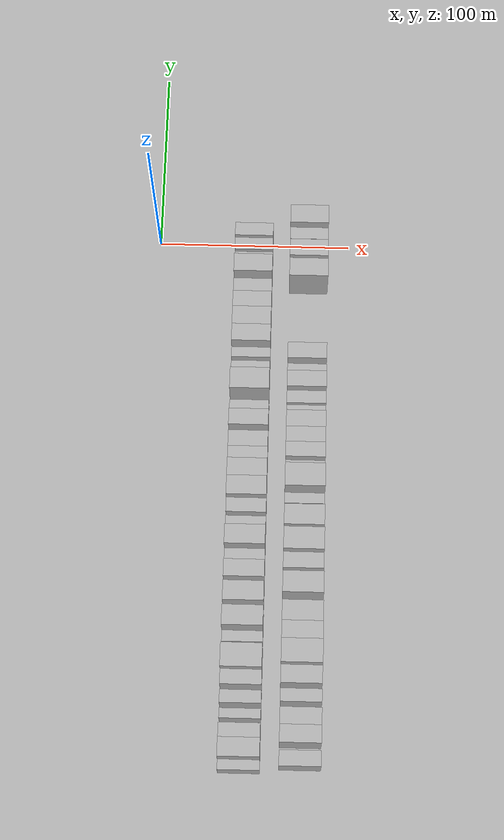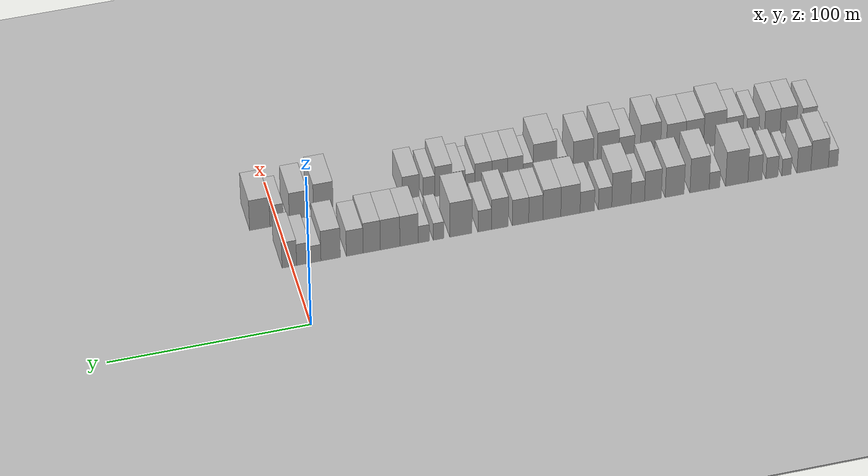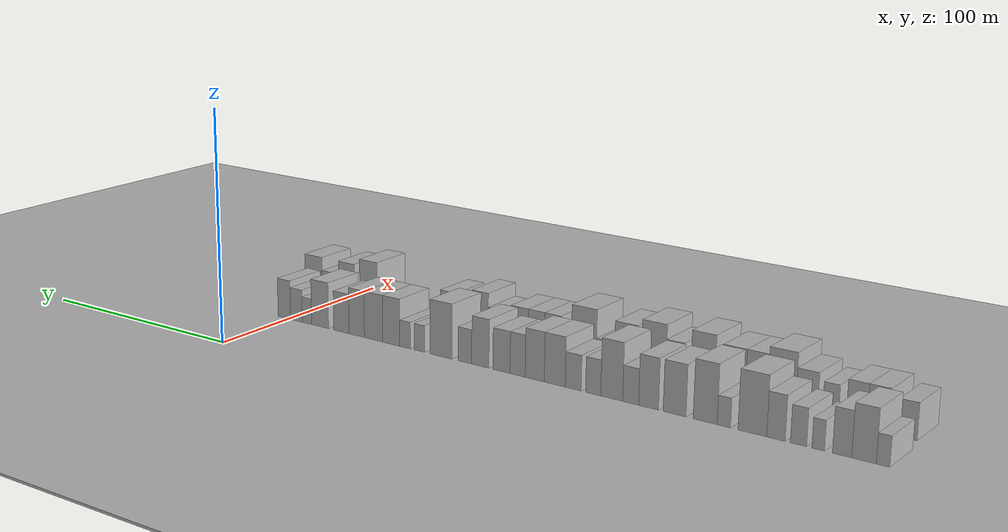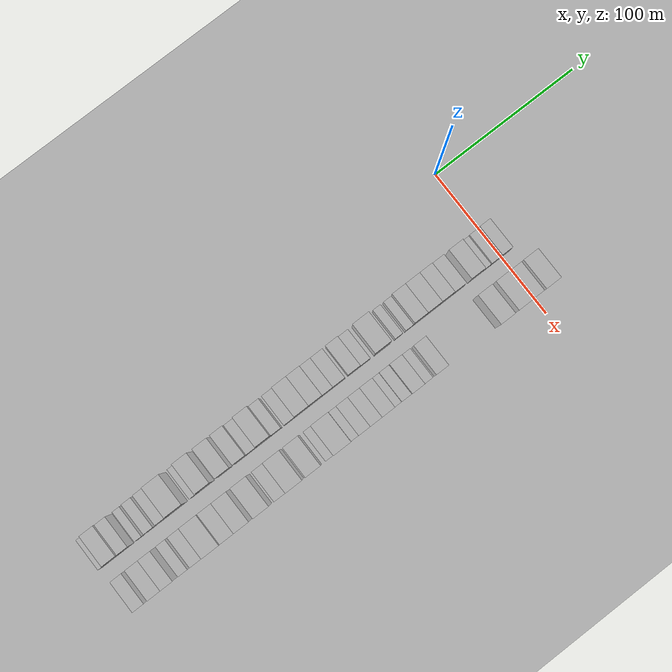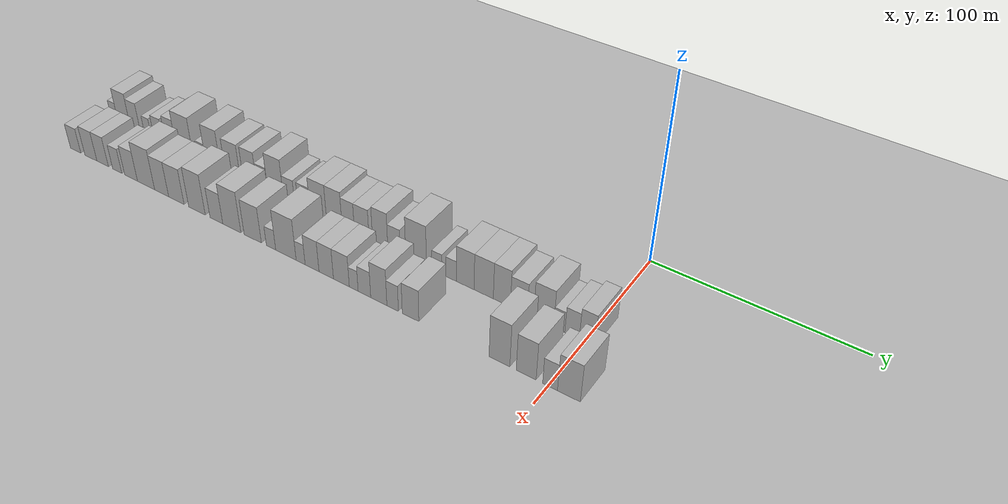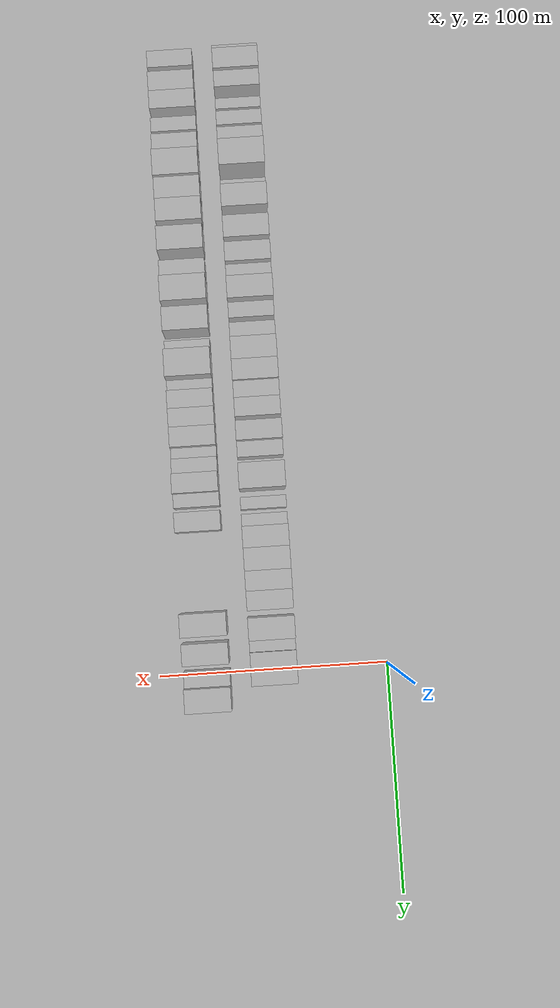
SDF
<sdf version="1.6">
 <world name="default">
  <include><name>ground_plane_1</name><uri>model://HANNAS_ground_plane</uri></include>
  <include>
   <name>ground_plane_2</name>
   <uri>model://HANNAS_ground_plane</uri>
   <pose>100 0 0  0 0 0</pose>
  </include>
  <model name="building_1">
   <static>1</static>
   <pose>50.0000 -275.5481 0 0.000000 0.000000 0.000000</pose>
   <link name="link">
    <pose>0 0 6.00 0 0 0</pose>
    <collision name="collision"><geometry><box><size>20.0000 4.9038 12.0000</size></box></geometry></collision>
    <visual name="visual">
     <cast_shadows>0</cast_shadows>
     <geometry><box><size>20.0000 4.9038 12.0000</size></box></geometry>
     <material>
      <script>
       <uri>model://HANNAS_wall/materials/scripts</uri>
       <uri>model://HANNAS_wall/materials/textures</uri>
       <name>vrc/HANNAS_wall</name>
      </script>
     </material>
    </visual>
   </link>
  </model>
  <model name="building_2">
   <static>1</static>
   <pose>50.0000 -268.5620 0 0.000000 0.000000 0.000000</pose>
   <link name="link">
    <pose>0 0 10.50 0 0 0</pose>
    <collision name="collision"><geometry><box><size>20.0000 9.0684 21.0000</size></box></geometry></collision>
    <visual name="visual">
     <cast_shadows>0</cast_shadows>
     <geometry><box><size>20.0000 9.0684 21.0000</size></box></geometry>
     <material>
      <script>
       <uri>model://HANNAS_wall/materials/scripts</uri>
       <uri>model://HANNAS_wall/materials/textures</uri>
       <name>vrc/HANNAS_wall</name>
      </script>
     </material>
    </visual>
   </link>
  </model>
  <model name="building_3">
   <static>1</static>
   <pose>50.0000 -260.4158 0 0.000000 0.000000 0.000000</pose>
   <link name="link">
    <pose>0 0 9.00 0 0 0</pose>
    <collision name="collision"><geometry><box><size>20.0000 7.2238 18.0000</size></box></geometry></collision>
    <visual name="visual">
     <cast_shadows>0</cast_shadows>
     <geometry><box><size>20.0000 7.2238 18.0000</size></box></geometry>
     <material>
      <script>
       <uri>model://HANNAS_wall/materials/scripts</uri>
       <uri>model://HANNAS_wall/materials/textures</uri>
       <name>vrc/HANNAS_wall</name>
      </script>
     </material>
    </visual>
   </link>
  </model>
  <model name="building_4">
   <static>1</static>
   <pose>50.0000 -251.4031 0 0.000000 0.000000 0.000000</pose>
   <link name="link">
    <pose>0 0 6.00 0 0 0</pose>
    <collision name="collision"><geometry><box><size>20.0000 4.8017 12.0000</size></box></geometry></collision>
    <visual name="visual">
     <cast_shadows>0</cast_shadows>
     <geometry><box><size>20.0000 4.8017 12.0000</size></box></geometry>
     <material>
      <script>
       <uri>model://HANNAS_wall/materials/scripts</uri>
       <uri>model://HANNAS_wall/materials/textures</uri>
       <name>vrc/HANNAS_wall</name>
      </script>
     </material>
    </visual>
   </link>
  </model>
  <model name="building_5">
   <static>1</static>
   <pose>50.0000 -243.8589 0 0.000000 0.000000 0.000000</pose>
   <link name="link">
    <pose>0 0 7.50 0 0 0</pose>
    <collision name="collision"><geometry><box><size>20.0000 6.2866 15.0000</size></box></geometry></collision>
    <visual name="visual">
     <cast_shadows>0</cast_shadows>
     <geometry><box><size>20.0000 6.2866 15.0000</size></box></geometry>
     <material>
      <script>
       <uri>model://HANNAS_wall/materials/scripts</uri>
       <uri>model://HANNAS_wall/materials/textures</uri>
       <name>vrc/HANNAS_wall</name>
      </script>
     </material>
    </visual>
   </link>
  </model>
  <model name="building_6">
   <static>1</static>
   <pose>50.0000 -235.0835 0 0.000000 0.000000 0.000000</pose>
   <link name="link">
    <pose>0 0 9.00 0 0 0</pose>
    <collision name="collision"><geometry><box><size>20.0000 7.2641 18.0000</size></box></geometry></collision>
    <visual name="visual">
     <cast_shadows>0</cast_shadows>
     <geometry><box><size>20.0000 7.2641 18.0000</size></box></geometry>
     <material>
      <script>
       <uri>model://HANNAS_wall/materials/scripts</uri>
       <uri>model://HANNAS_wall/materials/textures</uri>
       <name>vrc/HANNAS_wall</name>
      </script>
     </material>
    </visual>
   </link>
  </model>
  <model name="building_7">
   <static>1</static>
   <pose>50.0000 -225.6979 0 0.000000 0.000000 0.000000</pose>
   <link name="link">
    <pose>0 0 12.00 0 0 0</pose>
    <collision name="collision"><geometry><box><size>20.0000 11.5071 24.0000</size></box></geometry></collision>
    <visual name="visual">
     <cast_shadows>0</cast_shadows>
     <geometry><box><size>20.0000 11.5071 24.0000</size></box></geometry>
     <material>
      <script>
       <uri>model://HANNAS_wall/materials/scripts</uri>
       <uri>model://HANNAS_wall/materials/textures</uri>
       <name>vrc/HANNAS_wall</name>
      </script>
     </material>
    </visual>
   </link>
  </model>
  <model name="building_8">
   <static>1</static>
   <pose>50.0000 -214.2070 0 0.000000 0.000000 0.000000</pose>
   <link name="link">
    <pose>0 0 6.00 0 0 0</pose>
    <collision name="collision"><geometry><box><size>20.0000 5.4747 12.0000</size></box></geometry></collision>
    <visual name="visual">
     <cast_shadows>0</cast_shadows>
     <geometry><box><size>20.0000 5.4747 12.0000</size></box></geometry>
     <material>
      <script>
       <uri>model://HANNAS_wall/materials/scripts</uri>
       <uri>model://HANNAS_wall/materials/textures</uri>
       <name>vrc/HANNAS_wall</name>
      </script>
     </material>
    </visual>
   </link>
  </model>
  <model name="building_9">
   <static>1</static>
   <pose>50.0000 -206.5053 0 0.000000 0.000000 0.000000</pose>
   <link name="link">
    <pose>0 0 12.00 0 0 0</pose>
    <collision name="collision"><geometry><box><size>20.0000 9.9287 24.0000</size></box></geometry></collision>
    <visual name="visual">
     <cast_shadows>0</cast_shadows>
     <geometry><box><size>20.0000 9.9287 24.0000</size></box></geometry>
     <material>
      <script>
       <uri>model://HANNAS_wall/materials/scripts</uri>
       <uri>model://HANNAS_wall/materials/textures</uri>
       <name>vrc/HANNAS_wall</name>
      </script>
     </material>
    </visual>
   </link>
  </model>
  <model name="building_10">
   <static>1</static>
   <pose>50.0000 -193.6830 0 0.000000 0.000000 0.000000</pose>
   <link name="link">
    <pose>0 0 10.50 0 0 0</pose>
    <collision name="collision"><geometry><box><size>20.0000 9.7158 21.0000</size></box></geometry></collision>
    <visual name="visual">
     <cast_shadows>0</cast_shadows>
     <geometry><box><size>20.0000 9.7158 21.0000</size></box></geometry>
     <material>
      <script>
       <uri>model://HANNAS_wall/materials/scripts</uri>
       <uri>model://HANNAS_wall/materials/textures</uri>
       <name>vrc/HANNAS_wall</name>
      </script>
     </material>
    </visual>
   </link>
  </model>
  <model name="building_11">
   <static>1</static>
   <pose>50.0000 -182.5326 0 0.000000 0.000000 0.000000</pose>
   <link name="link">
    <pose>0 0 10.50 0 0 0</pose>
    <collision name="collision"><geometry><box><size>20.0000 8.5851 21.0000</size></box></geometry></collision>
    <visual name="visual">
     <cast_shadows>0</cast_shadows>
     <geometry><box><size>20.0000 8.5851 21.0000</size></box></geometry>
     <material>
      <script>
       <uri>model://HANNAS_wall/materials/scripts</uri>
       <uri>model://HANNAS_wall/materials/textures</uri>
       <name>vrc/HANNAS_wall</name>
      </script>
     </material>
    </visual>
   </link>
  </model>
  <model name="building_12">
   <static>1</static>
   <pose>50.0000 -174.7368 0 0.000000 0.000000 0.000000</pose>
   <link name="link">
    <pose>0 0 7.50 0 0 0</pose>
    <collision name="collision"><geometry><box><size>20.0000 7.0065 15.0000</size></box></geometry></collision>
    <visual name="visual">
     <cast_shadows>0</cast_shadows>
     <geometry><box><size>20.0000 7.0065 15.0000</size></box></geometry>
     <material>
      <script>
       <uri>model://HANNAS_wall/materials/scripts</uri>
       <uri>model://HANNAS_wall/materials/textures</uri>
       <name>vrc/HANNAS_wall</name>
      </script>
     </material>
    </visual>
   </link>
  </model>
  <model name="building_13">
   <static>1</static>
   <pose>50.0000 -166.3466 0 0.000000 0.000000 0.000000</pose>
   <link name="link">
    <pose>0 0 12.00 0 0 0</pose>
    <collision name="collision"><geometry><box><size>20.0000 9.7737 24.0000</size></box></geometry></collision>
    <visual name="visual">
     <cast_shadows>0</cast_shadows>
     <geometry><box><size>20.0000 9.7737 24.0000</size></box></geometry>
     <material>
      <script>
       <uri>model://HANNAS_wall/materials/scripts</uri>
       <uri>model://HANNAS_wall/materials/textures</uri>
       <name>vrc/HANNAS_wall</name>
      </script>
     </material>
    </visual>
   </link>
  </model>
  <model name="building_14">
   <static>1</static>
   <pose>50.0000 -158.0214 0 0.000000 0.000000 0.000000</pose>
   <link name="link">
    <pose>0 0 7.50 0 0 0</pose>
    <collision name="collision"><geometry><box><size>20.0000 6.8768 15.0000</size></box></geometry></collision>
    <visual name="visual">
     <cast_shadows>0</cast_shadows>
     <geometry><box><size>20.0000 6.8768 15.0000</size></box></geometry>
     <material>
      <script>
       <uri>model://HANNAS_wall/materials/scripts</uri>
       <uri>model://HANNAS_wall/materials/textures</uri>
       <name>vrc/HANNAS_wall</name>
      </script>
     </material>
    </visual>
   </link>
  </model>
  <model name="building_15">
   <static>1</static>
   <pose>50.0000 -148.9271 0 0.000000 0.000000 0.000000</pose>
   <link name="link">
    <pose>0 0 7.50 0 0 0</pose>
    <collision name="collision"><geometry><box><size>20.0000 7.3119 15.0000</size></box></geometry></collision>
    <visual name="visual">
     <cast_shadows>0</cast_shadows>
     <geometry><box><size>20.0000 7.3119 15.0000</size></box></geometry>
     <material>
      <script>
       <uri>model://HANNAS_wall/materials/scripts</uri>
       <uri>model://HANNAS_wall/materials/textures</uri>
       <name>vrc/HANNAS_wall</name>
      </script>
     </material>
    </visual>
   </link>
  </model>
  <model name="building_16">
   <static>1</static>
   <pose>50.0000 -140.3689 0 0.000000 0.000000 0.000000</pose>
   <link name="link">
    <pose>0 0 10.50 0 0 0</pose>
    <collision name="collision"><geometry><box><size>20.0000 9.8044 21.0000</size></box></geometry></collision>
    <visual name="visual">
     <cast_shadows>0</cast_shadows>
     <geometry><box><size>20.0000 9.8044 21.0000</size></box></geometry>
     <material>
      <script>
       <uri>model://HANNAS_wall/materials/scripts</uri>
       <uri>model://HANNAS_wall/materials/textures</uri>
       <name>vrc/HANNAS_wall</name>
      </script>
     </material>
    </visual>
   </link>
  </model>
  <model name="building_17">
   <static>1</static>
   <pose>50.0000 -130.9030 0 0.000000 0.000000 0.000000</pose>
   <link name="link">
    <pose>0 0 10.50 0 0 0</pose>
    <collision name="collision"><geometry><box><size>20.0000 9.1274 21.0000</size></box></geometry></collision>
    <visual name="visual">
     <cast_shadows>0</cast_shadows>
     <geometry><box><size>20.0000 9.1274 21.0000</size></box></geometry>
     <material>
      <script>
       <uri>model://HANNAS_wall/materials/scripts</uri>
       <uri>model://HANNAS_wall/materials/textures</uri>
       <name>vrc/HANNAS_wall</name>
      </script>
     </material>
    </visual>
   </link>
  </model>
  <model name="building_18">
   <static>1</static>
   <pose>50.0000 -122.7302 0 0.000000 0.000000 0.000000</pose>
   <link name="link">
    <pose>0 0 9.00 0 0 0</pose>
    <collision name="collision"><geometry><box><size>20.0000 7.2182 18.0000</size></box></geometry></collision>
    <visual name="visual">
     <cast_shadows>0</cast_shadows>
     <geometry><box><size>20.0000 7.2182 18.0000</size></box></geometry>
     <material>
      <script>
       <uri>model://HANNAS_wall/materials/scripts</uri>
       <uri>model://HANNAS_wall/materials/textures</uri>
       <name>vrc/HANNAS_wall</name>
      </script>
     </material>
    </visual>
   </link>
  </model>
  <model name="building_19">
   <static>1</static>
   <pose>50.0000 -114.9601 0 0.000000 0.000000 0.000000</pose>
   <link name="link">
    <pose>0 0 9.00 0 0 0</pose>
    <collision name="collision"><geometry><box><size>20.0000 8.3221 18.0000</size></box></geometry></collision>
    <visual name="visual">
     <cast_shadows>0</cast_shadows>
     <geometry><box><size>20.0000 8.3221 18.0000</size></box></geometry>
     <material>
      <script>
       <uri>model://HANNAS_wall/materials/scripts</uri>
       <uri>model://HANNAS_wall/materials/textures</uri>
       <name>vrc/HANNAS_wall</name>
      </script>
     </material>
    </visual>
   </link>
  </model>
  <model name="building_20">
   <static>1</static>
   <pose>50.0000 -104.5384 0 0.000000 0.000000 0.000000</pose>
   <link name="link">
    <pose>0 0 10.50 0 0 0</pose>
    <collision name="collision"><geometry><box><size>20.0000 8.5211 21.0000</size></box></geometry></collision>
    <visual name="visual">
     <cast_shadows>0</cast_shadows>
     <geometry><box><size>20.0000 8.5211 21.0000</size></box></geometry>
     <material>
      <script>
       <uri>model://HANNAS_wall/materials/scripts</uri>
       <uri>model://HANNAS_wall/materials/textures</uri>
       <name>vrc/HANNAS_wall</name>
      </script>
     </material>
    </visual>
   </link>
  </model>
  <model name="building_21">
   <static>1</static>
   <pose>50.0000 -96.8199 0 0.000000 0.000000 0.000000</pose>
   <link name="link">
    <pose>0 0 7.50 0 0 0</pose>
    <collision name="collision"><geometry><box><size>20.0000 6.9159 15.0000</size></box></geometry></collision>
    <visual name="visual">
     <cast_shadows>0</cast_shadows>
     <geometry><box><size>20.0000 6.9159 15.0000</size></box></geometry>
     <material>
      <script>
       <uri>model://HANNAS_wall/materials/scripts</uri>
       <uri>model://HANNAS_wall/materials/textures</uri>
       <name>vrc/HANNAS_wall</name>
      </script>
     </material>
    </visual>
   </link>
  </model>
  <model name="building_22">
   <static>1</static>
   <pose>50.0000 -84.7452 0 0.000000 0.000000 0.000000</pose>
   <link name="link">
    <pose>0 0 12.00 0 0 0</pose>
    <collision name="collision"><geometry><box><size>20.0000 11.2335 24.0000</size></box></geometry></collision>
    <visual name="visual">
     <cast_shadows>0</cast_shadows>
     <geometry><box><size>20.0000 11.2335 24.0000</size></box></geometry>
     <material>
      <script>
       <uri>model://HANNAS_wall/materials/scripts</uri>
       <uri>model://HANNAS_wall/materials/textures</uri>
       <name>vrc/HANNAS_wall</name>
      </script>
     </material>
    </visual>
   </link>
  </model>
  <model name="building_23">
   <static>1</static>
   <pose>50.0000 -73.4463 0 0.000000 0.000000 0.000000</pose>
   <link name="link">
    <pose>0 0 6.00 0 0 0</pose>
    <collision name="collision"><geometry><box><size>20.0000 5.3645 12.0000</size></box></geometry></collision>
    <visual name="visual">
     <cast_shadows>0</cast_shadows>
     <geometry><box><size>20.0000 5.3645 12.0000</size></box></geometry>
     <material>
      <script>
       <uri>model://HANNAS_wall/materials/scripts</uri>
       <uri>model://HANNAS_wall/materials/textures</uri>
       <name>vrc/HANNAS_wall</name>
      </script>
     </material>
    </visual>
   </link>
  </model>
  <model name="building_24">
   <static>1</static>
   <pose>50.0000 -65.9950 0 0.000000 0.000000 0.000000</pose>
   <link name="link">
    <pose>0 0 6.00 0 0 0</pose>
    <collision name="collision"><geometry><box><size>20.0000 5.5381 12.0000</size></box></geometry></collision>
    <visual name="visual">
     <cast_shadows>0</cast_shadows>
     <geometry><box><size>20.0000 5.5381 12.0000</size></box></geometry>
     <material>
      <script>
       <uri>model://HANNAS_wall/materials/scripts</uri>
       <uri>model://HANNAS_wall/materials/textures</uri>
       <name>vrc/HANNAS_wall</name>
      </script>
     </material>
    </visual>
   </link>
  </model>
  <model name="building_25">
   <static>1</static>
   <pose>50.0000 -58.6003 0 0.000000 0.000000 0.000000</pose>
   <link name="link">
    <pose>0 0 10.50 0 0 0</pose>
    <collision name="collision"><geometry><box><size>20.0000 9.2512 21.0000</size></box></geometry></collision>
    <visual name="visual">
     <cast_shadows>0</cast_shadows>
     <geometry><box><size>20.0000 9.2512 21.0000</size></box></geometry>
     <material>
      <script>
       <uri>model://HANNAS_wall/materials/scripts</uri>
       <uri>model://HANNAS_wall/materials/textures</uri>
       <name>vrc/HANNAS_wall</name>
      </script>
     </material>
    </visual>
   </link>
  </model>
  <model name="building_26">
   <static>1</static>
   <pose>50.0000 -49.0487 0 0.000000 0.000000 0.000000</pose>
   <link name="link">
    <pose>0 0 10.50 0 0 0</pose>
    <collision name="collision"><geometry><box><size>20.0000 9.8520 21.0000</size></box></geometry></collision>
    <visual name="visual">
     <cast_shadows>0</cast_shadows>
     <geometry><box><size>20.0000 9.8520 21.0000</size></box></geometry>
     <material>
      <script>
       <uri>model://HANNAS_wall/materials/scripts</uri>
       <uri>model://HANNAS_wall/materials/textures</uri>
       <name>vrc/HANNAS_wall</name>
      </script>
     </material>
    </visual>
   </link>
  </model>
  <model name="building_27">
   <static>1</static>
   <pose>50.0000 -39.8249 0 0.000000 0.000000 0.000000</pose>
   <link name="link">
    <pose>0 0 10.50 0 0 0</pose>
    <collision name="collision"><geometry><box><size>20.0000 8.5956 21.0000</size></box></geometry></collision>
    <visual name="visual">
     <cast_shadows>0</cast_shadows>
     <geometry><box><size>20.0000 8.5956 21.0000</size></box></geometry>
     <material>
      <script>
       <uri>model://HANNAS_wall/materials/scripts</uri>
       <uri>model://HANNAS_wall/materials/textures</uri>
       <name>vrc/HANNAS_wall</name>
      </script>
     </material>
    </visual>
   </link>
  </model>
  <model name="building_28">
   <static>1</static>
   <pose>50.0000 -31.3022 0 0.000000 0.000000 0.000000</pose>
   <link name="link">
    <pose>0 0 9.00 0 0 0</pose>
    <collision name="collision"><geometry><box><size>20.0000 8.4498 18.0000</size></box></geometry></collision>
    <visual name="visual">
     <cast_shadows>0</cast_shadows>
     <geometry><box><size>20.0000 8.4498 18.0000</size></box></geometry>
     <material>
      <script>
       <uri>model://HANNAS_wall/materials/scripts</uri>
       <uri>model://HANNAS_wall/materials/textures</uri>
       <name>vrc/HANNAS_wall</name>
      </script>
     </material>
    </visual>
   </link>
  </model>
  <model name="building_29">
   <static>1</static>
   <pose>50.0000 -19.2158 0 0.000000 0.000000 0.000000</pose>
   <link name="link">
    <pose>0 0 10.50 0 0 0</pose>
    <collision name="collision"><geometry><box><size>20.0000 9.7230 21.0000</size></box></geometry></collision>
    <visual name="visual">
     <cast_shadows>0</cast_shadows>
     <geometry><box><size>20.0000 9.7230 21.0000</size></box></geometry>
     <material>
      <script>
       <uri>model://HANNAS_wall/materials/scripts</uri>
       <uri>model://HANNAS_wall/materials/textures</uri>
       <name>vrc/HANNAS_wall</name>
      </script>
     </material>
    </visual>
   </link>
  </model>
  <model name="building_30">
   <static>1</static>
   <pose>50.0000 -11.6826 0 0.000000 0.000000 0.000000</pose>
   <link name="link">
    <pose>0 0 6.00 0 0 0</pose>
    <collision name="collision"><geometry><box><size>20.0000 5.3433 12.0000</size></box></geometry></collision>
    <visual name="visual">
     <cast_shadows>0</cast_shadows>
     <geometry><box><size>20.0000 5.3433 12.0000</size></box></geometry>
     <material>
      <script>
       <uri>model://HANNAS_wall/materials/scripts</uri>
       <uri>model://HANNAS_wall/materials/textures</uri>
       <name>vrc/HANNAS_wall</name>
      </script>
     </material>
    </visual>
   </link>
  </model>
  <model name="building_31">
   <static>1</static>
   <pose>50.0000 -5.6127 0 0.000000 0.000000 0.000000</pose>
   <link name="link">
    <pose>0 0 7.50 0 0 0</pose>
    <collision name="collision"><geometry><box><size>20.0000 6.7966 15.0000</size></box></geometry></collision>
    <visual name="visual">
     <cast_shadows>0</cast_shadows>
     <geometry><box><size>20.0000 6.7966 15.0000</size></box></geometry>
     <material>
      <script>
       <uri>model://HANNAS_wall/materials/scripts</uri>
       <uri>model://HANNAS_wall/materials/textures</uri>
       <name>vrc/HANNAS_wall</name>
      </script>
     </material>
    </visual>
   </link>
  </model>
  <model name="building_32">
   <static>1</static>
   <pose>50.0000 1.4330 0 0.000000 0.000000 0.000000</pose>
   <link name="link">
    <pose>0 0 9.00 0 0 0</pose>
    <collision name="collision"><geometry><box><size>20.0000 7.2947 18.0000</size></box></geometry></collision>
    <visual name="visual">
     <cast_shadows>0</cast_shadows>
     <geometry><box><size>20.0000 7.2947 18.0000</size></box></geometry>
     <material>
      <script>
       <uri>model://HANNAS_wall/materials/scripts</uri>
       <uri>model://HANNAS_wall/materials/textures</uri>
       <name>vrc/HANNAS_wall</name>
      </script>
     </material>
    </visual>
   </link>
  </model>
  <model name="building_62">
   <static>1</static>
   <pose>79.0000 -272.2514 0 0.000000 0.000000 0.000000</pose>
   <link name="link">
    <pose>0 0 7.50 0 0 0</pose>
    <collision name="collision"><geometry><box><size>20.0000 7.4972 15.0000</size></box></geometry></collision>
    <visual name="visual">
     <cast_shadows>0</cast_shadows>
     <geometry><box><size>20.0000 7.4972 15.0000</size></box></geometry>
     <material>
      <script>
       <uri>model://HANNAS_wall/materials/scripts</uri>
       <uri>model://HANNAS_wall/materials/textures</uri>
       <name>vrc/HANNAS_wall</name>
      </script>
     </material>
    </visual>
   </link>
  </model>
  <model name="building_63">
   <static>1</static>
   <pose>79.0000 -261.2175 0 0.000000 0.000000 0.000000</pose>
   <link name="link">
    <pose>0 0 9.00 0 0 0</pose>
    <collision name="collision"><geometry><box><size>20.0000 8.5707 18.0000</size></box></geometry></collision>
    <visual name="visual">
     <cast_shadows>0</cast_shadows>
     <geometry><box><size>20.0000 8.5707 18.0000</size></box></geometry>
     <material>
      <script>
       <uri>model://HANNAS_wall/materials/scripts</uri>
       <uri>model://HANNAS_wall/materials/textures</uri>
       <name>vrc/HANNAS_wall</name>
      </script>
     </material>
    </visual>
   </link>
  </model>
  <model name="building_64">
   <static>1</static>
   <pose>79.0000 -252.8536 0 0.000000 0.000000 0.000000</pose>
   <link name="link">
    <pose>0 0 9.00 0 0 0</pose>
    <collision name="collision"><geometry><box><size>20.0000 8.1570 18.0000</size></box></geometry></collision>
    <visual name="visual">
     <cast_shadows>0</cast_shadows>
     <geometry><box><size>20.0000 8.1570 18.0000</size></box></geometry>
     <material>
      <script>
       <uri>model://HANNAS_wall/materials/scripts</uri>
       <uri>model://HANNAS_wall/materials/textures</uri>
       <name>vrc/HANNAS_wall</name>
      </script>
     </material>
    </visual>
   </link>
  </model>
  <model name="building_65">
   <static>1</static>
   <pose>79.0000 -242.6065 0 0.000000 0.000000 0.000000</pose>
   <link name="link">
    <pose>0 0 7.50 0 0 0</pose>
    <collision name="collision"><geometry><box><size>20.0000 6.3374 15.0000</size></box></geometry></collision>
    <visual name="visual">
     <cast_shadows>0</cast_shadows>
     <geometry><box><size>20.0000 6.3374 15.0000</size></box></geometry>
     <material>
      <script>
       <uri>model://HANNAS_wall/materials/scripts</uri>
       <uri>model://HANNAS_wall/materials/textures</uri>
       <name>vrc/HANNAS_wall</name>
      </script>
     </material>
    </visual>
   </link>
  </model>
  <model name="building_66">
   <static>1</static>
   <pose>79.0000 -233.0617 0 0.000000 0.000000 0.000000</pose>
   <link name="link">
    <pose>0 0 9.00 0 0 0</pose>
    <collision name="collision"><geometry><box><size>20.0000 8.7522 18.0000</size></box></geometry></collision>
    <visual name="visual">
     <cast_shadows>0</cast_shadows>
     <geometry><box><size>20.0000 8.7522 18.0000</size></box></geometry>
     <material>
      <script>
       <uri>model://HANNAS_wall/materials/scripts</uri>
       <uri>model://HANNAS_wall/materials/textures</uri>
       <name>vrc/HANNAS_wall</name>
      </script>
     </material>
    </visual>
   </link>
  </model>
  <model name="building_67">
   <static>1</static>
   <pose>79.0000 -222.9079 0 0.000000 0.000000 0.000000</pose>
   <link name="link">
    <pose>0 0 12.00 0 0 0</pose>
    <collision name="collision"><geometry><box><size>20.0000 11.5553 24.0000</size></box></geometry></collision>
    <visual name="visual">
     <cast_shadows>0</cast_shadows>
     <geometry><box><size>20.0000 11.5553 24.0000</size></box></geometry>
     <material>
      <script>
       <uri>model://HANNAS_wall/materials/scripts</uri>
       <uri>model://HANNAS_wall/materials/textures</uri>
       <name>vrc/HANNAS_wall</name>
      </script>
     </material>
    </visual>
   </link>
  </model>
  <model name="building_68">
   <static>1</static>
   <pose>79.0000 -212.4812 0 0.000000 0.000000 0.000000</pose>
   <link name="link">
    <pose>0 0 10.50 0 0 0</pose>
    <collision name="collision"><geometry><box><size>20.0000 9.2982 21.0000</size></box></geometry></collision>
    <visual name="visual">
     <cast_shadows>0</cast_shadows>
     <geometry><box><size>20.0000 9.2982 21.0000</size></box></geometry>
     <material>
      <script>
       <uri>model://HANNAS_wall/materials/scripts</uri>
       <uri>model://HANNAS_wall/materials/textures</uri>
       <name>vrc/HANNAS_wall</name>
      </script>
     </material>
    </visual>
   </link>
  </model>
  <model name="building_69">
   <static>1</static>
   <pose>79.0000 -202.8003 0 0.000000 0.000000 0.000000</pose>
   <link name="link">
    <pose>0 0 10.50 0 0 0</pose>
    <collision name="collision"><geometry><box><size>20.0000 10.0636 21.0000</size></box></geometry></collision>
    <visual name="visual">
     <cast_shadows>0</cast_shadows>
     <geometry><box><size>20.0000 10.0636 21.0000</size></box></geometry>
     <material>
      <script>
       <uri>model://HANNAS_wall/materials/scripts</uri>
       <uri>model://HANNAS_wall/materials/textures</uri>
       <name>vrc/HANNAS_wall</name>
      </script>
     </material>
    </visual>
   </link>
  </model>
  <model name="building_70">
   <static>1</static>
   <pose>79.0000 -189.4865 0 0.000000 0.000000 0.000000</pose>
   <link name="link">
    <pose>0 0 12.00 0 0 0</pose>
    <collision name="collision"><geometry><box><size>20.0000 10.5639 24.0000</size></box></geometry></collision>
    <visual name="visual">
     <cast_shadows>0</cast_shadows>
     <geometry><box><size>20.0000 10.5639 24.0000</size></box></geometry>
     <material>
      <script>
       <uri>model://HANNAS_wall/materials/scripts</uri>
       <uri>model://HANNAS_wall/materials/textures</uri>
       <name>vrc/HANNAS_wall</name>
      </script>
     </material>
    </visual>
   </link>
  </model>
  <model name="building_71">
   <static>1</static>
   <pose>79.0000 -177.2088 0 0.000000 0.000000 0.000000</pose>
   <link name="link">
    <pose>0 0 9.00 0 0 0</pose>
    <collision name="collision"><geometry><box><size>20.0000 7.9917 18.0000</size></box></geometry></collision>
    <visual name="visual">
     <cast_shadows>0</cast_shadows>
     <geometry><box><size>20.0000 7.9917 18.0000</size></box></geometry>
     <material>
      <script>
       <uri>model://HANNAS_wall/materials/scripts</uri>
       <uri>model://HANNAS_wall/materials/textures</uri>
       <name>vrc/HANNAS_wall</name>
      </script>
     </material>
    </visual>
   </link>
  </model>
  <model name="building_72">
   <static>1</static>
   <pose>79.0000 -167.6345 0 0.000000 0.000000 0.000000</pose>
   <link name="link">
    <pose>0 0 12.00 0 0 0</pose>
    <collision name="collision"><geometry><box><size>20.0000 11.1567 24.0000</size></box></geometry></collision>
    <visual name="visual">
     <cast_shadows>0</cast_shadows>
     <geometry><box><size>20.0000 11.1567 24.0000</size></box></geometry>
     <material>
      <script>
       <uri>model://HANNAS_wall/materials/scripts</uri>
       <uri>model://HANNAS_wall/materials/textures</uri>
       <name>vrc/HANNAS_wall</name>
      </script>
     </material>
    </visual>
   </link>
  </model>
  <model name="building_73">
   <static>1</static>
   <pose>79.0000 -154.8669 0 0.000000 0.000000 0.000000</pose>
   <link name="link">
    <pose>0 0 10.50 0 0 0</pose>
    <collision name="collision"><geometry><box><size>20.0000 10.3785 21.0000</size></box></geometry></collision>
    <visual name="visual">
     <cast_shadows>0</cast_shadows>
     <geometry><box><size>20.0000 10.3785 21.0000</size></box></geometry>
     <material>
      <script>
       <uri>model://HANNAS_wall/materials/scripts</uri>
       <uri>model://HANNAS_wall/materials/textures</uri>
       <name>vrc/HANNAS_wall</name>
      </script>
     </material>
    </visual>
   </link>
  </model>
  <model name="building_74">
   <static>1</static>
   <pose>79.0000 -143.9066 0 0.000000 0.000000 0.000000</pose>
   <link name="link">
    <pose>0 0 6.00 0 0 0</pose>
    <collision name="collision"><geometry><box><size>20.0000 5.5421 12.0000</size></box></geometry></collision>
    <visual name="visual">
     <cast_shadows>0</cast_shadows>
     <geometry><box><size>20.0000 5.5421 12.0000</size></box></geometry>
     <material>
      <script>
       <uri>model://HANNAS_wall/materials/scripts</uri>
       <uri>model://HANNAS_wall/materials/textures</uri>
       <name>vrc/HANNAS_wall</name>
      </script>
     </material>
    </visual>
   </link>
  </model>
  <model name="building_75">
   <static>1</static>
   <pose>79.0000 -135.1710 0 0.000000 0.000000 0.000000</pose>
   <link name="link">
    <pose>0 0 12.00 0 0 0</pose>
    <collision name="collision"><geometry><box><size>20.0000 11.9293 24.0000</size></box></geometry></collision>
    <visual name="visual">
     <cast_shadows>0</cast_shadows>
     <geometry><box><size>20.0000 11.9293 24.0000</size></box></geometry>
     <material>
      <script>
       <uri>model://HANNAS_wall/materials/scripts</uri>
       <uri>model://HANNAS_wall/materials/textures</uri>
       <name>vrc/HANNAS_wall</name>
      </script>
     </material>
    </visual>
   </link>
  </model>
  <model name="building_76">
   <static>1</static>
   <pose>79.0000 -126.6259 0 0.000000 0.000000 0.000000</pose>
   <link name="link">
    <pose>0 0 6.00 0 0 0</pose>
    <collision name="collision"><geometry><box><size>20.0000 5.1607 12.0000</size></box></geometry></collision>
    <visual name="visual">
     <cast_shadows>0</cast_shadows>
     <geometry><box><size>20.0000 5.1607 12.0000</size></box></geometry>
     <material>
      <script>
       <uri>model://HANNAS_wall/materials/scripts</uri>
       <uri>model://HANNAS_wall/materials/textures</uri>
       <name>vrc/HANNAS_wall</name>
      </script>
     </material>
    </visual>
   </link>
  </model>
  <model name="building_77">
   <static>1</static>
   <pose>79.0000 -120.1014 0 0.000000 0.000000 0.000000</pose>
   <link name="link">
    <pose>0 0 9.00 0 0 0</pose>
    <collision name="collision"><geometry><box><size>20.0000 7.8884 18.0000</size></box></geometry></collision>
    <visual name="visual">
     <cast_shadows>0</cast_shadows>
     <geometry><box><size>20.0000 7.8884 18.0000</size></box></geometry>
     <material>
      <script>
       <uri>model://HANNAS_wall/materials/scripts</uri>
       <uri>model://HANNAS_wall/materials/textures</uri>
       <name>vrc/HANNAS_wall</name>
      </script>
     </material>
    </visual>
   </link>
  </model>
  <model name="building_78">
   <static>1</static>
   <pose>79.0000 -112.1084 0 0.000000 0.000000 0.000000</pose>
   <link name="link">
    <pose>0 0 9.00 0 0 0</pose>
    <collision name="collision"><geometry><box><size>20.0000 8.0975 18.0000</size></box></geometry></collision>
    <visual name="visual">
     <cast_shadows>0</cast_shadows>
     <geometry><box><size>20.0000 8.0975 18.0000</size></box></geometry>
     <material>
      <script>
       <uri>model://HANNAS_wall/materials/scripts</uri>
       <uri>model://HANNAS_wall/materials/textures</uri>
       <name>vrc/HANNAS_wall</name>
      </script>
     </material>
    </visual>
   </link>
  </model>
  <model name="building_79">
   <static>1</static>
   <pose>79.0000 -103.6844 0 0.000000 0.000000 0.000000</pose>
   <link name="link">
    <pose>0 0 9.00 0 0 0</pose>
    <collision name="collision"><geometry><box><size>20.0000 8.7507 18.0000</size></box></geometry></collision>
    <visual name="visual">
     <cast_shadows>0</cast_shadows>
     <geometry><box><size>20.0000 8.7507 18.0000</size></box></geometry>
     <material>
      <script>
       <uri>model://HANNAS_wall/materials/scripts</uri>
       <uri>model://HANNAS_wall/materials/textures</uri>
       <name>vrc/HANNAS_wall</name>
      </script>
     </material>
    </visual>
   </link>
  </model>
  <model name="building_80">
   <static>1</static>
   <pose>79.0000 -96.9012 0 0.000000 0.000000 0.000000</pose>
   <link name="link">
    <pose>0 0 6.00 0 0 0</pose>
    <collision name="collision"><geometry><box><size>20.0000 4.8157 12.0000</size></box></geometry></collision>
    <visual name="visual">
     <cast_shadows>0</cast_shadows>
     <geometry><box><size>20.0000 4.8157 12.0000</size></box></geometry>
     <material>
      <script>
       <uri>model://HANNAS_wall/materials/scripts</uri>
       <uri>model://HANNAS_wall/materials/textures</uri>
       <name>vrc/HANNAS_wall</name>
      </script>
     </material>
    </visual>
   </link>
  </model>
  <model name="building_81">
   <static>1</static>
   <pose>79.0000 -91.0856 0 0.000000 0.000000 0.000000</pose>
   <link name="link">
    <pose>0 0 7.50 0 0 0</pose>
    <collision name="collision"><geometry><box><size>20.0000 6.8156 15.0000</size></box></geometry></collision>
    <visual name="visual">
     <cast_shadows>0</cast_shadows>
     <geometry><box><size>20.0000 6.8156 15.0000</size></box></geometry>
     <material>
      <script>
       <uri>model://HANNAS_wall/materials/scripts</uri>
       <uri>model://HANNAS_wall/materials/textures</uri>
       <name>vrc/HANNAS_wall</name>
      </script>
     </material>
    </visual>
   </link>
  </model>
  <model name="building_82">
   <static>1</static>
   <pose>79.0000 -83.3715 0 0.000000 0.000000 0.000000</pose>
   <link name="link">
    <pose>0 0 10.50 0 0 0</pose>
    <collision name="collision"><geometry><box><size>20.0000 8.6126 21.0000</size></box></geometry></collision>
    <visual name="visual">
     <cast_shadows>0</cast_shadows>
     <geometry><box><size>20.0000 8.6126 21.0000</size></box></geometry>
     <material>
      <script>
       <uri>model://HANNAS_wall/materials/scripts</uri>
       <uri>model://HANNAS_wall/materials/textures</uri>
       <name>vrc/HANNAS_wall</name>
      </script>
     </material>
    </visual>
   </link>
  </model>
  <model name="building_83">
   <static>1</static>
   <pose>79.0000 -76.0395 0 0.000000 0.000000 0.000000</pose>
   <link name="link">
    <pose>0 0 7.50 0 0 0</pose>
    <collision name="collision"><geometry><box><size>20.0000 6.0514 15.0000</size></box></geometry></collision>
    <visual name="visual">
     <cast_shadows>0</cast_shadows>
     <geometry><box><size>20.0000 6.0514 15.0000</size></box></geometry>
     <material>
      <script>
       <uri>model://HANNAS_wall/materials/scripts</uri>
       <uri>model://HANNAS_wall/materials/textures</uri>
       <name>vrc/HANNAS_wall</name>
      </script>
     </material>
    </visual>
   </link>
  </model>
  <model name="building_84">
   <static>1</static>
   <pose>79.0000 -66.7159 0 0.000000 0.000000 0.000000</pose>
   <link name="link">
    <pose>0 0 9.00 0 0 0</pose>
    <collision name="collision"><geometry><box><size>20.0000 8.5958 18.0000</size></box></geometry></collision>
    <visual name="visual">
     <cast_shadows>0</cast_shadows>
     <geometry><box><size>20.0000 8.5958 18.0000</size></box></geometry>
     <material>
      <script>
       <uri>model://HANNAS_wall/materials/scripts</uri>
       <uri>model://HANNAS_wall/materials/textures</uri>
       <name>vrc/HANNAS_wall</name>
      </script>
     </material>
    </visual>
   </link>
  </model>
  <model name="building_85">
   <static>1</static>
   <pose>79.0000 -22.5513 0 0.000000 0.000000 0.000000</pose>
   <link name="link">
    <pose>0 0 12.00 0 0 0</pose>
    <collision name="collision"><geometry><box><size>20.0000 9.9112 24.0000</size></box></geometry></collision>
    <visual name="visual">
     <cast_shadows>0</cast_shadows>
     <geometry><box><size>20.0000 9.9112 24.0000</size></box></geometry>
     <material>
      <script>
       <uri>model://HANNAS_wall/materials/scripts</uri>
       <uri>model://HANNAS_wall/materials/textures</uri>
       <name>vrc/HANNAS_wall</name>
      </script>
     </material>
    </visual>
   </link>
  </model>
  <model name="building_86">
   <static>1</static>
   <pose>79.0000 -9.9575 0 0.000000 0.000000 0.000000</pose>
   <link name="link">
    <pose>0 0 10.50 0 0 0</pose>
    <collision name="collision"><geometry><box><size>20.0000 9.2766 21.0000</size></box></geometry></collision>
    <visual name="visual">
     <cast_shadows>0</cast_shadows>
     <geometry><box><size>20.0000 9.2766 21.0000</size></box></geometry>
     <material>
      <script>
       <uri>model://HANNAS_wall/materials/scripts</uri>
       <uri>model://HANNAS_wall/materials/textures</uri>
       <name>vrc/HANNAS_wall</name>
      </script>
     </material>
    </visual>
   </link>
  </model>
  <model name="building_87">
   <static>1</static>
   <pose>79.0000 1.0490 0 0.000000 0.000000 0.000000</pose>
   <link name="link">
    <pose>0 0 7.50 0 0 0</pose>
    <collision name="collision"><geometry><box><size>20.0000 6.7363 15.0000</size></box></geometry></collision>
    <visual name="visual">
     <cast_shadows>0</cast_shadows>
     <geometry><box><size>20.0000 6.7363 15.0000</size></box></geometry>
     <material>
      <script>
       <uri>model://HANNAS_wall/materials/scripts</uri>
       <uri>model://HANNAS_wall/materials/textures</uri>
       <name>vrc/HANNAS_wall</name>
      </script>
     </material>
    </visual>
   </link>
  </model>
  <model name="building_88">
   <static>1</static>
   <pose>79.0000 9.5544 0 0.000000 0.000000 0.000000</pose>
   <link name="link">
    <pose>0 0 10.50 0 0 0</pose>
    <collision name="collision"><geometry><box><size>20.0000 10.2745 21.0000</size></box></geometry></collision>
    <visual name="visual">
     <cast_shadows>0</cast_shadows>
     <geometry><box><size>20.0000 10.2745 21.0000</size></box></geometry>
     <material>
      <script>
       <uri>model://HANNAS_wall/materials/scripts</uri>
       <uri>model://HANNAS_wall/materials/textures</uri>
       <name>vrc/HANNAS_wall</name>
      </script>
     </material>
    </visual>
   </link>
  </model>
 </world>
</sdf>
